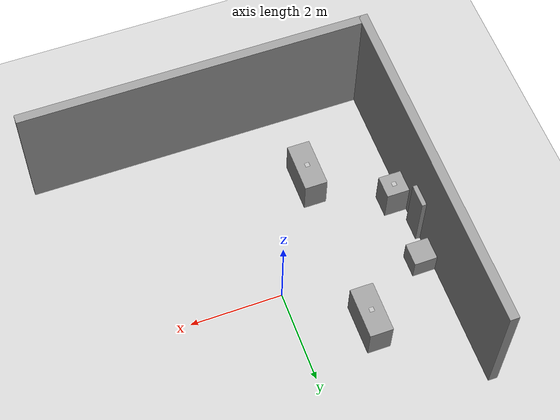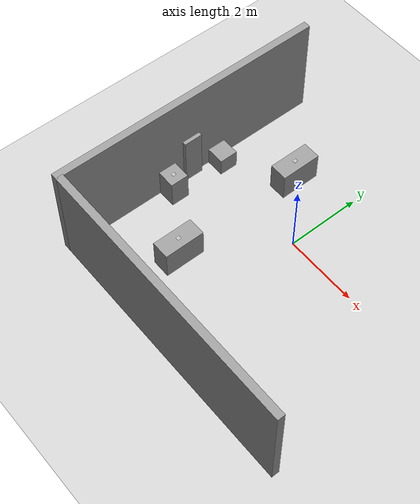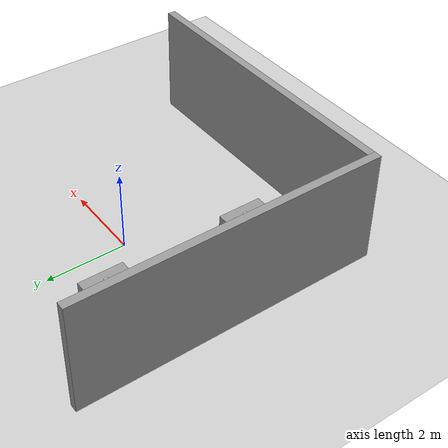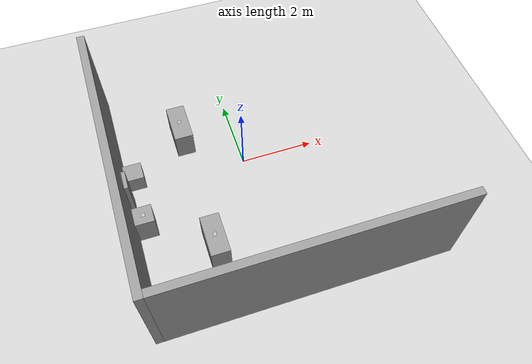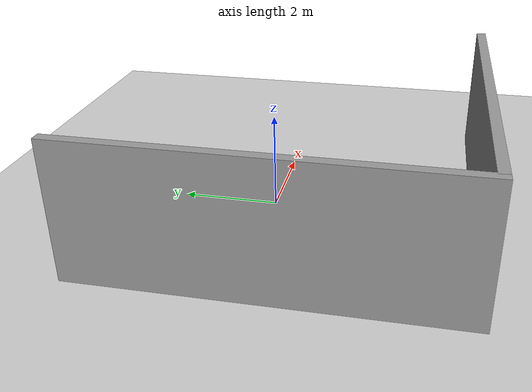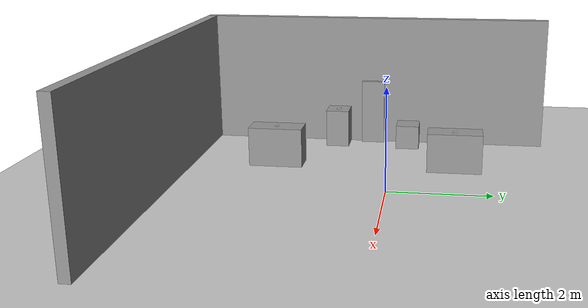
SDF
<sdf version="1.7">
 <world name="default">
  <model name="ground_plane">
   <static>1</static>
   <link name="link">
    <collision name="collision">
     <geometry><plane><normal>0 0 1</normal><size>100 100</size></plane></geometry>
     <surface><friction><ode><mu>100</mu><mu2>50</mu2></ode></friction></surface>
    </collision>
    <visual name="visual">
     <cast_shadows>0</cast_shadows>
     <geometry><plane><normal>0 0 1</normal><size>100 100</size></plane></geometry>
     <material>
      <script><uri>file://media/materials/scripts/gazebo.material</uri><name>Gazebo/Grey</name></script>
     </material>
    </visual>
   </link>
  </model>
  <model name="grey_wall_0">
   <static>1</static>
   <link name="link">
    <pose>0 0 1.4 0 -0 0</pose>
    <collision name="collision"><geometry><box><size>7.5 0.2 2.8</size></box></geometry></collision>
    <visual name="visual">
     <cast_shadows>0</cast_shadows>
     <geometry><box><size>7.5 0.2 2.8</size></box></geometry>
     <material>
      <script>
       <uri>model://grey_wall/materials/scripts</uri>
       <uri>model://grey_wall/materials/textures</uri>
       <name>vrc/grey_wall</name>
      </script>
     </material>
    </visual>
   </link>
   <pose>0.458614 -4.2 0 0 -0 0</pose>
  </model>
  <model name="grey_wall_1">
   <static>1</static>
   <link name="link">
    <pose>0 0 1.4 0 -0 0</pose>
    <collision name="collision"><geometry><box><size>7.5 0.2 2.8</size></box></geometry></collision>
    <visual name="visual">
     <cast_shadows>0</cast_shadows>
     <geometry><box><size>7.5 0.2 2.8</size></box></geometry>
     <material>
      <script>
       <uri>model://grey_wall/materials/scripts</uri>
       <uri>model://grey_wall/materials/textures</uri>
       <name>vrc/grey_wall</name>
      </script>
     </material>
    </visual>
   </link>
   <pose>-3.35 -0.55 0 0 -0 1.57</pose>
  </model>
  <model name="dock">
   <link name="link">
    <inertial>
     <mass>1</mass>
     <inertia>
      <ixx>0.166667</ixx>
      <ixy>0</ixy>
      <ixz>0</ixz>
      <iyy>0.166667</iyy>
      <iyz>0</iyz>
      <izz>0.166667</izz>
     </inertia>
    </inertial>
    <visual name="visual">
     <geometry><box><size>0.1 0.5 1.4</size></box></geometry>
     <material>
      <script><name>Gazebo/Grey</name><uri>file://media/materials/scripts/gazebo.material</uri></script>
      <shader type="pixel"><normal_map>__default__</normal_map></shader>
      <ambient>0.3 0.3 0.3 1</ambient>
      <diffuse>0.7 0.7 0.7 1</diffuse>
      <specular>0.01 0.01 0.01 1</specular>
      <emissive>0 0 0 1</emissive>
     </material>
     <pose>0 0 0.2 0 -0 0</pose>
    </visual>
    <collision name="collision">
     <pose>0 0 0.2 0 -0 0</pose>
     <geometry><box><size>0.1 0.5 1.4</size></box></geometry>
     <surface>
      <friction>
       <ode><mu>1</mu><mu2>1</mu2><fdir1>0 0 0</fdir1><slip1>0</slip1><slip2>0</slip2></ode>
       <torsional>
        <coefficient>1</coefficient>
        <patch_radius>0</patch_radius>
        <surface_radius>0</surface_radius>
        <use_patch_radius>1</use_patch_radius>
        <ode><slip>0</slip></ode>
       </torsional>
      </friction>
      <bounce><restitution_coefficient>0</restitution_coefficient><threshold>1e+06</threshold></bounce>
      <contact>
       <collide_without_contact>0</collide_without_contact>
       <collide_without_contact_bitmask>1</collide_without_contact_bitmask>
       <collide_bitmask>1</collide_bitmask>
       <ode>
        <soft_cfm>0</soft_cfm>
        <soft_erp>0.2</soft_erp>
        <kp>1e+13</kp>
        <kd>1</kd>
        <max_vel>0.01</max_vel>
        <min_depth>0</min_depth>
       </ode>
       <bullet>
        <split_impulse>1</split_impulse>
        <split_impulse_penetration_threshold>-0.01</split_impulse_penetration_threshold>
        <soft_cfm>0</soft_cfm>
        <soft_erp>0.2</soft_erp>
        <kp>1e+13</kp>
        <kd>1</kd>
       </bullet>
      </contact>
     </surface>
    </collision>
   </link>
   <static>1</static>
   <pose>-3.2 -0.547 0.5 0 -0 0</pose>
  </model>
  <model name="Apriltag36_11_00003">
   <link name="main">
    <visual name="main_Visual">
     <geometry><box><size>0.1 0.1 0.01</size></box></geometry>
     <material>
      <script>
       <uri>model://Apriltag36_11_00003/materials/scripts</uri>
       <uri>model://Apriltag36_11_00003/materials/textures</uri>
       <name>Apriltag36_11_00003</name>
      </script>
     </material>
    </visual>
   </link>
   <static>1</static>
   <pose>-3 -1.3 0.796 0 -0 0</pose>
  </model>
  <model name="TableMKII_1">
   <link name="link">
    <inertial>
     <mass>1</mass>
     <inertia>
      <ixx>0.166667</ixx>
      <ixy>0</ixy>
      <ixz>0</ixz>
      <iyy>0.166667</iyy>
      <iyz>0</iyz>
      <izz>0.166667</izz>
     </inertia>
    </inertial>
    <visual name="visual">
     <geometry><box><size>0.5 1.1 0.8</size></box></geometry>
     <material>
      <script><name>Gazebo/Grey</name><uri>file://media/materials/scripts/gazebo.material</uri></script>
      <shader type="pixel"><normal_map>__default__</normal_map></shader>
      <ambient>0.3 0.3 0.3 1</ambient>
      <diffuse>0.7 0.7 0.7 1</diffuse>
      <specular>0.01 0.01 0.01 1</specular>
      <emissive>0 0 0 1</emissive>
     </material>
     <pose>0 0 -0.1 0 -0 0</pose>
    </visual>
    <collision name="collision">
     <pose>0 0 -0.1 0 -0 0</pose>
     <geometry><box><size>0.5 1.1 0.8</size></box></geometry>
     <surface>
      <friction>
       <ode><mu>1</mu><mu2>1</mu2><fdir1>0 0 0</fdir1><slip1>0</slip1><slip2>0</slip2></ode>
       <torsional>
        <coefficient>1</coefficient>
        <patch_radius>0</patch_radius>
        <surface_radius>0</surface_radius>
        <use_patch_radius>1</use_patch_radius>
        <ode><slip>0</slip></ode>
       </torsional>
      </friction>
      <bounce><restitution_coefficient>0</restitution_coefficient><threshold>1e+06</threshold></bounce>
      <contact>
       <collide_without_contact>0</collide_without_contact>
       <collide_without_contact_bitmask>1</collide_without_contact_bitmask>
       <collide_bitmask>1</collide_bitmask>
       <ode>
        <soft_cfm>0</soft_cfm>
        <soft_erp>0.2</soft_erp>
        <kp>1e+13</kp>
        <kd>1</kd>
        <max_vel>0.01</max_vel>
        <min_depth>0</min_depth>
       </ode>
       <bullet>
        <split_impulse>1</split_impulse>
        <split_impulse_penetration_threshold>-0.01</split_impulse_penetration_threshold>
        <soft_cfm>0</soft_cfm>
        <soft_erp>0.2</soft_erp>
        <kp>1e+13</kp>
        <kd>1</kd>
       </bullet>
      </contact>
     </surface>
    </collision>
   </link>
   <static>1</static>
   <pose>-1.4375 -2.37 0.5 0 -0 0</pose>
  </model>
  <model name="Apriltag36_11_00002">
   <link name="main">
    <visual name="main_Visual">
     <geometry><box><size>0.1 0.1 0.01</size></box></geometry>
     <material>
      <script>
       <uri>model://Apriltag36_11_00002/materials/scripts</uri>
       <uri>model://Apriltag36_11_00002/materials/textures</uri>
       <name>Apriltag36_11_00002</name>
      </script>
     </material>
    </visual>
   </link>
   <static>1</static>
   <pose>-1.4375 -2.37 0.796 0 -0 0</pose>
  </model>
  <model name="TableMKII_2">
   <link name="link">
    <inertial>
     <mass>1</mass>
     <inertia>
      <ixx>0.166667</ixx>
      <ixy>0</ixy>
      <ixz>0</ixz>
      <iyy>0.166667</iyy>
      <iyz>0</iyz>
      <izz>0.166667</izz>
     </inertia>
    </inertial>
    <visual name="visual">
     <geometry><box><size>0.5 1.1 0.8</size></box></geometry>
     <material>
      <script><name>Gazebo/Grey</name><uri>file://media/materials/scripts/gazebo.material</uri></script>
      <shader type="pixel"><normal_map>__default__</normal_map></shader>
      <ambient>0.3 0.3 0.3 1</ambient>
      <diffuse>0.7 0.7 0.7 1</diffuse>
      <specular>0.01 0.01 0.01 1</specular>
      <emissive>0 0 0 1</emissive>
     </material>
     <pose>0 0 -0.1 0 -0 0</pose>
    </visual>
    <collision name="collision">
     <pose>0 0 -0.1 0 -0 0</pose>
     <geometry><box><size>0.5 1.1 0.8</size></box></geometry>
     <surface>
      <friction>
       <ode><mu>1</mu><mu2>1</mu2><fdir1>0 0 0</fdir1><slip1>0</slip1><slip2>0</slip2></ode>
       <torsional>
        <coefficient>1</coefficient>
        <patch_radius>0</patch_radius>
        <surface_radius>0</surface_radius>
        <use_patch_radius>1</use_patch_radius>
        <ode><slip>0</slip></ode>
       </torsional>
      </friction>
      <bounce><restitution_coefficient>0</restitution_coefficient><threshold>1e+06</threshold></bounce>
      <contact>
       <collide_without_contact>0</collide_without_contact>
       <collide_without_contact_bitmask>1</collide_without_contact_bitmask>
       <collide_bitmask>1</collide_bitmask>
       <ode>
        <soft_cfm>0</soft_cfm>
        <soft_erp>0.2</soft_erp>
        <kp>1e+13</kp>
        <kd>1</kd>
        <max_vel>0.01</max_vel>
        <min_depth>0</min_depth>
       </ode>
       <bullet>
        <split_impulse>1</split_impulse>
        <split_impulse_penetration_threshold>-0.01</split_impulse_penetration_threshold>
        <soft_cfm>0</soft_cfm>
        <soft_erp>0.2</soft_erp>
        <kp>1e+13</kp>
        <kd>1</kd>
       </bullet>
      </contact>
     </surface>
    </collision>
   </link>
   <static>1</static>
   <pose>-1.4375 1.276 0.5 0 -0 0</pose>
  </model>
  <model name="Apriltag36_11_00004">
   <link name="main">
    <visual name="main_Visual">
     <geometry><box><size>0.1 0.1 0.01</size></box></geometry>
     <material>
      <script>
       <uri>model://Apriltag36_11_00004/materials/scripts</uri>
       <uri>model://Apriltag36_11_00004/materials/textures</uri>
       <name>Apriltag36_11_00004</name>
      </script>
     </material>
    </visual>
   </link>
   <static>1</static>
   <pose>-1.4375 1.276 0.796 0 -0 0</pose>
  </model>
  <model name="side_table">
   <link name="link">
    <inertial>
     <mass>1</mass>
     <inertia>
      <ixx>0.166667</ixx>
      <ixy>0</ixy>
      <ixz>0</ixz>
      <iyy>0.166667</iyy>
      <iyz>0</iyz>
      <izz>0.166667</izz>
     </inertia>
    </inertial>
    <visual name="visual">
     <geometry><box><size>0.5 0.5 0.8</size></box></geometry>
     <material>
      <script><name>Gazebo/Grey</name><uri>file://media/materials/scripts/gazebo.material</uri></script>
      <shader type="pixel"><normal_map>__default__</normal_map></shader>
      <ambient>0.3 0.3 0.3 1</ambient>
      <diffuse>0.7 0.7 0.7 1</diffuse>
      <specular>0.01 0.01 0.01 1</specular>
      <emissive>0 0 0 1</emissive>
     </material>
     <pose>0 0 -0.1 0 -0 0</pose>
    </visual>
    <collision name="collision">
     <pose>0 0 -0.1 0 -0 0</pose>
     <geometry><box><size>0.5 0.5 0.8</size></box></geometry>
     <surface>
      <friction>
       <ode><mu>1</mu><mu2>1</mu2><fdir1>0 0 0</fdir1><slip1>0</slip1><slip2>0</slip2></ode>
       <torsional>
        <coefficient>1</coefficient>
        <patch_radius>0</patch_radius>
        <surface_radius>0</surface_radius>
        <use_patch_radius>1</use_patch_radius>
        <ode><slip>0</slip></ode>
       </torsional>
      </friction>
      <bounce><restitution_coefficient>0</restitution_coefficient><threshold>1e+06</threshold></bounce>
      <contact>
       <collide_without_contact>0</collide_without_contact>
       <collide_without_contact_bitmask>1</collide_without_contact_bitmask>
       <collide_bitmask>1</collide_bitmask>
       <ode>
        <soft_cfm>0</soft_cfm>
        <soft_erp>0.2</soft_erp>
        <kp>1e+13</kp>
        <kd>1</kd>
        <max_vel>0.01</max_vel>
        <min_depth>0</min_depth>
       </ode>
       <bullet>
        <split_impulse>1</split_impulse>
        <split_impulse_penetration_threshold>-0.01</split_impulse_penetration_threshold>
        <soft_cfm>0</soft_cfm>
        <soft_erp>0.2</soft_erp>
        <kp>1e+13</kp>
        <kd>1</kd>
       </bullet>
      </contact>
     </surface>
    </collision>
   </link>
   <static>1</static>
   <pose>-3 -1.3 0.5 0 -0 0</pose>
  </model>
  <model name="side_table_0">
   <link name="link">
    <inertial>
     <mass>1</mass>
     <inertia>
      <ixx>0.166667</ixx>
      <ixy>0</ixy>
      <ixz>0</ixz>
      <iyy>0.166667</iyy>
      <iyz>0</iyz>
      <izz>0.166667</izz>
     </inertia>
    </inertial>
    <visual name="visual">
     <geometry><box><size>0.5 0.5 0.8</size></box></geometry>
     <material>
      <script><name>Gazebo/Grey</name><uri>file://media/materials/scripts/gazebo.material</uri></script>
      <shader type="pixel"><normal_map>__default__</normal_map></shader>
      <ambient>0.3 0.3 0.3 1</ambient>
      <diffuse>0.7 0.7 0.7 1</diffuse>
      <specular>0.01 0.01 0.01 1</specular>
      <emissive>0 0 0 1</emissive>
     </material>
     <pose>0 0 -0.1 0 -0 0</pose>
    </visual>
    <collision name="collision">
     <pose>0 0 -0.1 0 -0 0</pose>
     <geometry><box><size>0.5 0.5 0.8</size></box></geometry>
     <surface>
      <friction>
       <ode><mu>1</mu><mu2>1</mu2><fdir1>0 0 0</fdir1><slip1>0</slip1><slip2>0</slip2></ode>
       <torsional>
        <coefficient>1</coefficient>
        <patch_radius>0</patch_radius>
        <surface_radius>0</surface_radius>
        <use_patch_radius>1</use_patch_radius>
        <ode><slip>0</slip></ode>
       </torsional>
      </friction>
      <bounce><restitution_coefficient>0</restitution_coefficient><threshold>1e+06</threshold></bounce>
      <contact>
       <collide_without_contact>0</collide_without_contact>
       <collide_without_contact_bitmask>1</collide_without_contact_bitmask>
       <collide_bitmask>1</collide_bitmask>
       <ode>
        <soft_cfm>0</soft_cfm>
        <soft_erp>0.2</soft_erp>
        <kp>1e+13</kp>
        <kd>1</kd>
        <max_vel>0.01</max_vel>
        <min_depth>0</min_depth>
       </ode>
       <bullet>
        <split_impulse>1</split_impulse>
        <split_impulse_penetration_threshold>-0.01</split_impulse_penetration_threshold>
        <soft_cfm>0</soft_cfm>
        <soft_erp>0.2</soft_erp>
        <kp>1e+13</kp>
        <kd>1</kd>
       </bullet>
      </contact>
     </surface>
    </collision>
   </link>
   <static>1</static>
   <pose>-3 0.25 0.2 0 -0 0</pose>
  </model>
 </world>
</sdf>
